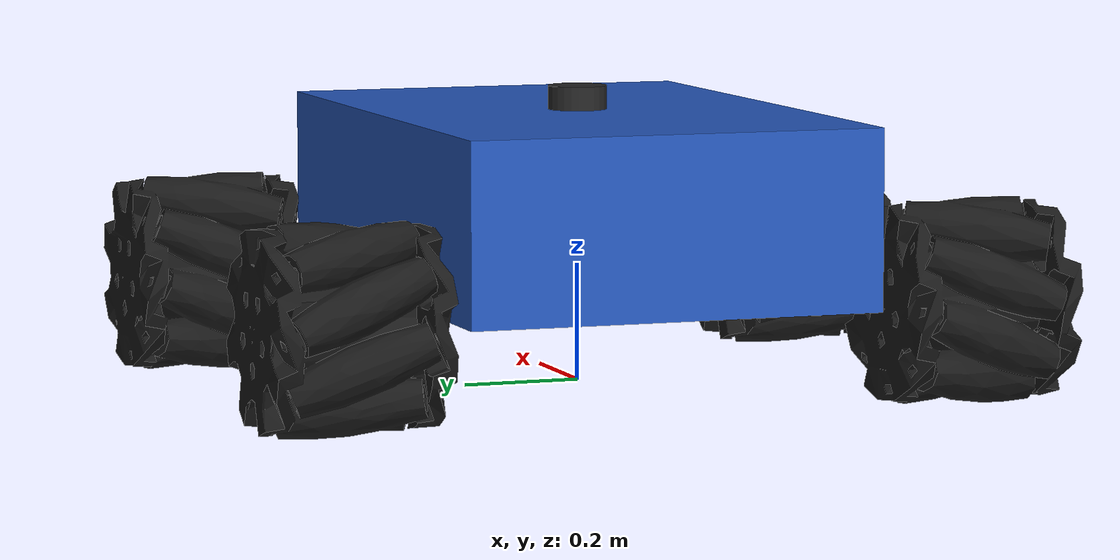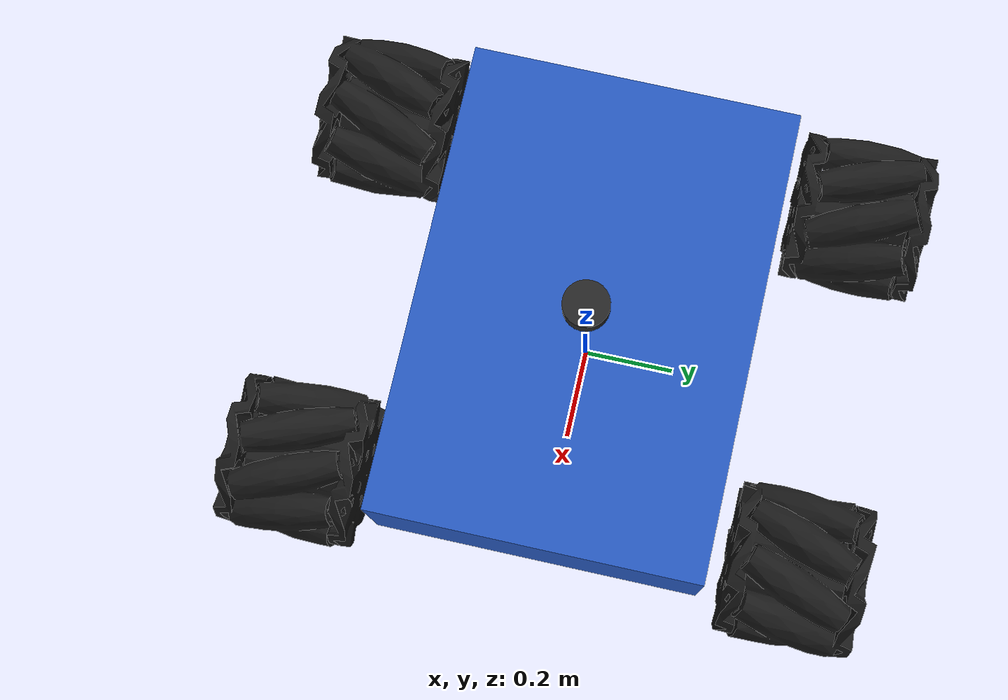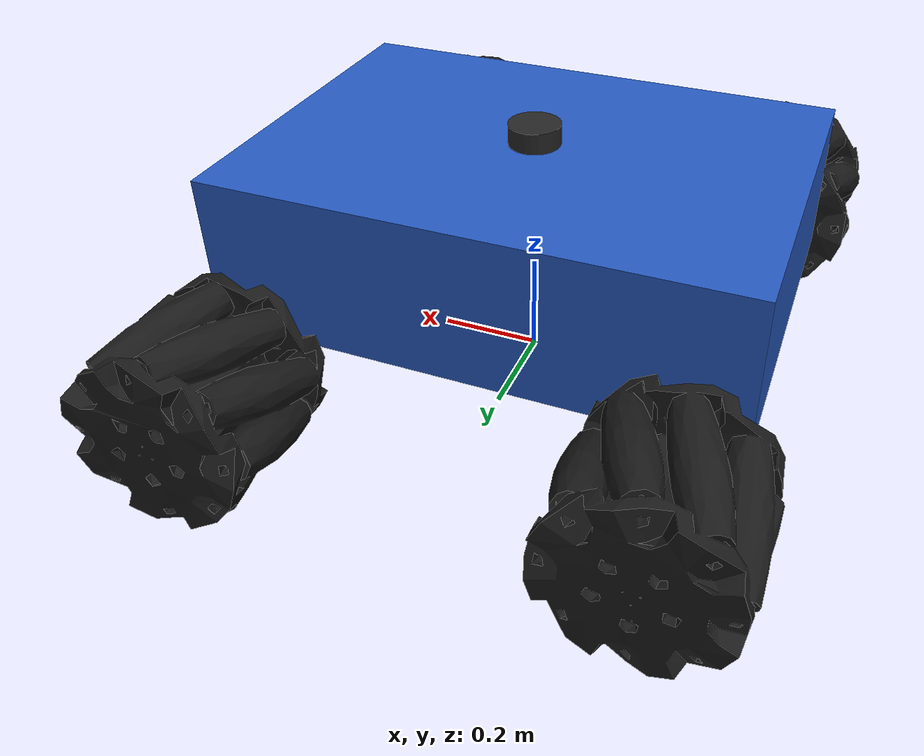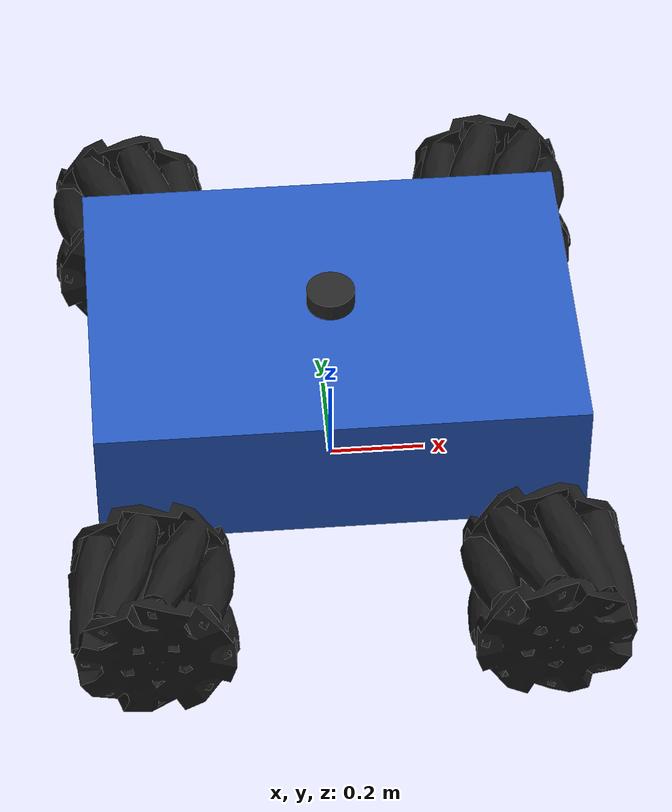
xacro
<?xml version="1.0"?>
<!-- Ince gercek-robot ust-xacro: ortak govde + gercek ros2_control
     (ESP32 micro-ROS tasima katmani). -->
<robot xmlns:xacro="http://www.ros.org/wiki/xacro" name="mecanum_robot">

  <xacro:arg name="transport" default="mock"/>
  <xacro:arg name="command_topic" default="wheel/commands"/>
  <xacro:arg name="state_topic" default="wheel/states"/>
  <xacro:arg name="feedback_mode" default="required"/>

  <xacro:include filename="$(find mecanum_robot_description)/urdf/mecanum_robot.xacro"/>
  <xacro:include filename="$(find mecanum_control)/urdf/ros2_control_real.xacro"/>

  <xacro:mecanum_ros2_control_real
    transport="$(arg transport)"
    command_topic="$(arg command_topic)"
    state_topic="$(arg state_topic)"
    feedback_mode="$(arg feedback_mode)"/>

</robot>

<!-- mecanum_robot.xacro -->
<robot xmlns:xacro="http://www.ros.org/wiki/xacro"
       xmlns:gz="http://gazebosim.org/schema"
       xmlns:ignition="http://gazebosim.org/schema"
       name="mecanum_robot">

  <!-- ═══════════════════════════════════════════════════════════
       PARAMETRELER
       ═══════════════════════════════════════════════════════════ -->

  <!-- Gövde boyutları (metre) -->
  <xacro:property name="body_length" value="1.0"/>
  <xacro:property name="body_width"  value="0.7"/>
  <xacro:property name="body_height" value="0.3"/>

  <!-- Teker boyutları -->
  <xacro:property name="wheel_radius" value="0.1625"/>
  <xacro:property name="wheel_width"  value="0.09"/>
  <xacro:property name="wheel_scale"  value="0.01"/>

  <!-- Teker offset'leri (gövde merkezine göre) -->
  <xacro:property name="wheel_offset_x" value="${body_length/2 - 0.10}"/>
  <xacro:property name="wheel_offset_y" value="${body_width/2 + wheel_width + 0.1}"/>

  <!-- Kütle -->
  <xacro:property name="body_mass"  value="20.0"/>
  <xacro:property name="wheel_mass" value="1.0"/>

  <!-- Gövde merkez yüksekliği (tekerlek üzerinde) -->
  <xacro:property name="body_z" value="${wheel_radius + body_height/2}"/>

  <!-- Mesh yolları -->
  <xacro:property name="wheel_mesh_left"  value="package://mecanum_robot_description/meshes/mecanum_wheel_left.stl"/>
  <xacro:property name="wheel_mesh_right" value="package://mecanum_robot_description/meshes/mecanum_wheel_right.stl"/>

  <!-- ═══════════════════════════════════════════════════════════
       BASE FOOTPRINT & BASE LINK
       ═══════════════════════════════════════════════════════════ -->

  <link name="base_footprint"/>

  <joint name="base_joint" type="fixed">
    <parent link="base_footprint"/>
    <child link="base_link"/>
  </joint>

  <link name="base_link">
    <inertial>
      <origin xyz="0 0 ${body_z}" rpy="0 0 0"/>
      <mass value="${body_mass}"/>
      <inertia
        ixx="${(1.0/12.0) * body_mass * (body_height*body_height + body_width*body_width)}"
        iyy="${(1.0/12.0) * body_mass * (body_height*body_height + body_length*body_length)}"
        izz="${(1.0/12.0) * body_mass * (body_length*body_length + body_width*body_width)}"
        ixy="0" ixz="0" iyz="0"/>
    </inertial>
    <visual>
      <origin xyz="0 0 ${body_z}" rpy="0 0 0"/>
      <geometry>
        <box size="${body_length} ${body_width} ${body_height}"/>
      </geometry>
      <material name="blue">
        <color rgba="0.15 0.35 0.75 1"/>
      </material>
    </visual>
    <collision>
      <origin xyz="0 0 ${body_z}" rpy="0 0 0"/>
      <geometry>
        <box size="${body_length} ${body_width} ${body_height}"/>
      </geometry>
    </collision>
  </link>

  <xacro:macro name="mecanum_wheel" params="name parent x y z mesh fdir_x fdir_y">
    <link name="${name}">
      <inertial>
        <mass value="${wheel_mass}"/>
        <origin xyz="0 0 0" rpy="0 0 0"/>
        <inertia
          ixx="${(1.0/12.0) * wheel_mass * (3*wheel_radius*wheel_radius + wheel_width*wheel_width)}"
          iyy="${(1.0/2.0)  * wheel_mass * wheel_radius*wheel_radius}"
          izz="${(1.0/12.0) * wheel_mass * (3*wheel_radius*wheel_radius + wheel_width*wheel_width)}"
          ixy="0" ixz="0" iyz="0"/>
      </inertial>
      <visual>
        <geometry>
          <mesh filename="${mesh}" scale="${wheel_scale} ${wheel_scale} ${wheel_scale}"/>
        </geometry>
        <material name="dark_rubber">
          <color rgba="0.1 0.1 0.1 1"/>
        </material>
      </visual>
      <collision>
        <origin xyz="0 0 0" rpy="0 0 0"/>
        <geometry>
          <sphere radius="${wheel_radius}"/>
        </geometry>
      </collision>
    </link>

    <joint name="${name}_joint" type="continuous">
      <parent link="${parent}"/>
      <child link="${name}"/>
      <origin xyz="${x} ${y} ${z}" rpy="0 0 0"/>
      <axis xyz="0 1 0"/>
      <limit effort="50.0" velocity="20.0"/>
      <dynamics damping="0.1" friction="0.1"/>
    </joint>

    <gazebo reference="${name}">
      <collision>
        <surface>
          <friction>
            <ode>
              <mu>1.0</mu>
              <mu2>0.0</mu2>
              <fdir1 ignition:expressed_in="base_footprint">${fdir_x} ${fdir_y} 0</fdir1>
            </ode>
          </friction>
        </surface>
      </collision>
    </gazebo>
  </xacro:macro>

  <!-- ═══════════════════════════════════════════════════════════
       4 MECANUM TEKER INSTANTIATE
       ═══════════════════════════════════════════════════════════ -->

  <!-- Ön Sol (FL) -->
  <xacro:mecanum_wheel name="wheel_fl" parent="base_link"
    x="${wheel_offset_x}" y="${wheel_offset_y}" z="${wheel_radius}"
    mesh="${wheel_mesh_left}" fdir_x="0.70710678" fdir_y="-0.70710678"/>

  <!-- Ön Sağ (FR) -->
  <xacro:mecanum_wheel name="wheel_fr" parent="base_link"
    x="${wheel_offset_x}" y="-${wheel_offset_y}" z="${wheel_radius}"
    mesh="${wheel_mesh_right}" fdir_x="0.70710678" fdir_y="0.70710678"/>

  <!-- Arka Sol (RL) -->
  <xacro:mecanum_wheel name="wheel_rl" parent="base_link"
    x="-${wheel_offset_x}" y="${wheel_offset_y}" z="${wheel_radius}"
    mesh="${wheel_mesh_right}" fdir_x="0.70710678" fdir_y="0.70710678"/>

  <!-- Arka Sağ (RR) -->
  <xacro:mecanum_wheel name="wheel_rr" parent="base_link"
    x="-${wheel_offset_x}" y="-${wheel_offset_y}" z="${wheel_radius}"
    mesh="${wheel_mesh_left}" fdir_x="0.70710678" fdir_y="-0.70710678"/>

  <!-- ═══════════════════════════════════════════════════════════
       LIDAR SENSÖRÜ
       ═══════════════════════════════════════════════════════════ -->

  <xacro:property name="lidar_z" value="${body_z + body_height/2 + 0.02}"/>

  <link name="lidar_link">
    <inertial>
      <mass value="0.2"/>
      <origin xyz="0 0 0" rpy="0 0 0"/>
      <inertia ixx="0.0001" iyy="0.0001" izz="0.0001" ixy="0" ixz="0" iyz="0"/>
    </inertial>
    <visual>
      <geometry>
        <cylinder radius="0.05" length="0.04"/>
      </geometry>
      <material name="sensor_black">
        <color rgba="0.15 0.15 0.15 1"/>
      </material>
    </visual>
    <collision>
      <geometry>
        <cylinder radius="0.05" length="0.04"/>
      </geometry>
    </collision>
  </link>

  <joint name="lidar_joint" type="fixed">
    <parent link="base_link"/>
    <child link="lidar_link"/>
    <origin xyz="0 0 ${lidar_z}" rpy="0 0 0"/>
  </joint>

  <!-- ═══════════════════════════════════════════════════════════
       IMU (BNO055) — govde merkezine yakin, sabit joint
       ═══════════════════════════════════════════════════════════ -->

  <link name="imu_link">
    <inertial>
      <mass value="0.05"/>
      <origin xyz="0 0 0" rpy="0 0 0"/>
      <inertia ixx="0.00001" iyy="0.00001" izz="0.00001" ixy="0" ixz="0" iyz="0"/>
    </inertial>
    <visual>
      <geometry>
        <box size="0.02 0.02 0.01"/>
      </geometry>
      <material name="sensor_black"/>
    </visual>
  </link>

  <!-- Gercek BNO055 montaj pozu CAD/olcumle dogrulanmadi. -->
  <joint name="imu_joint" type="fixed">
    <parent link="base_link"/>
    <child link="imu_link"/>
    <origin xyz="0 0 ${body_z}" rpy="0 0 0"/>
  </joint>

  <gazebo>
    <plugin filename="libignition-gazebo6-odometry-publisher-system.so"
            name="ignition::gazebo::systems::OdometryPublisher">
      <odom_frame>ground_truth_odom</odom_frame>
      <robot_base_frame>base_footprint</robot_base_frame>
      <odom_topic>/model/mecanum_robot/odometry</odom_topic>
      <odom_publish_frequency>30</odom_publish_frequency>
      <dimensions>3</dimensions>
      <tf_topic>/model/mecanum_robot/ground_truth_tf_unused</tf_topic>
    </plugin>
  </gazebo>

  <!-- Lidar sensörü (Gazebo) -->
  <gazebo reference="lidar_link">
    <sensor name="lidar" type="gpu_lidar">
      <always_on>true</always_on>
      <update_rate>5.5</update_rate>
      <topic>/scan</topic>
      <gz_frame_id>lidar_link</gz_frame_id>
      <lidar>
        <scan>
          <horizontal>
            <samples>1450</samples>
            <resolution>1</resolution>
            <min_angle>-3.14159</min_angle>
            <max_angle>3.14159</max_angle>
          </horizontal>
          <vertical>
            <samples>1</samples>
            <resolution>1</resolution>
            <min_angle>0</min_angle>
            <max_angle>0</max_angle>
          </vertical>
        </scan>
        <range>
          <min>0.15</min>
          <max>12.0</max>
          <resolution>0.01</resolution>
        </range>
        <noise>
          <type>gaussian</type>
          <mean>0.0</mean>
          <stddev>0.01</stddev>
        </noise>
      </lidar>
      <visualize>true</visualize>
    </sensor>
  </gazebo>

  <!-- IMU sensoru (Gazebo) — gercekte BNO055 driver'i imu/data_raw uretir -->
  <gazebo reference="imu_link">
    <sensor name="imu_sensor" type="imu">
      <always_on>true</always_on>
      <update_rate>100</update_rate>
      <topic>/imu/data_raw</topic>
      <gz_frame_id>imu_link</gz_frame_id>
      <imu>
        <angular_velocity>
          <x><noise type="gaussian"><mean>0.0</mean><stddev>0.0003</stddev></noise></x>
          <y><noise type="gaussian"><mean>0.0</mean><stddev>0.0003</stddev></noise></y>
          <z><noise type="gaussian"><mean>0.0</mean><stddev>0.0003</stddev></noise></z>
        </angular_velocity>
        <linear_acceleration>
          <x><noise type="gaussian"><mean>0.0</mean><stddev>0.017</stddev></noise></x>
          <y><noise type="gaussian"><mean>0.0</mean><stddev>0.017</stddev></noise></y>
          <z><noise type="gaussian"><mean>0.0</mean><stddev>0.017</stddev></noise></z>
        </linear_acceleration>
      </imu>
    </sensor>
  </gazebo>

</robot>
